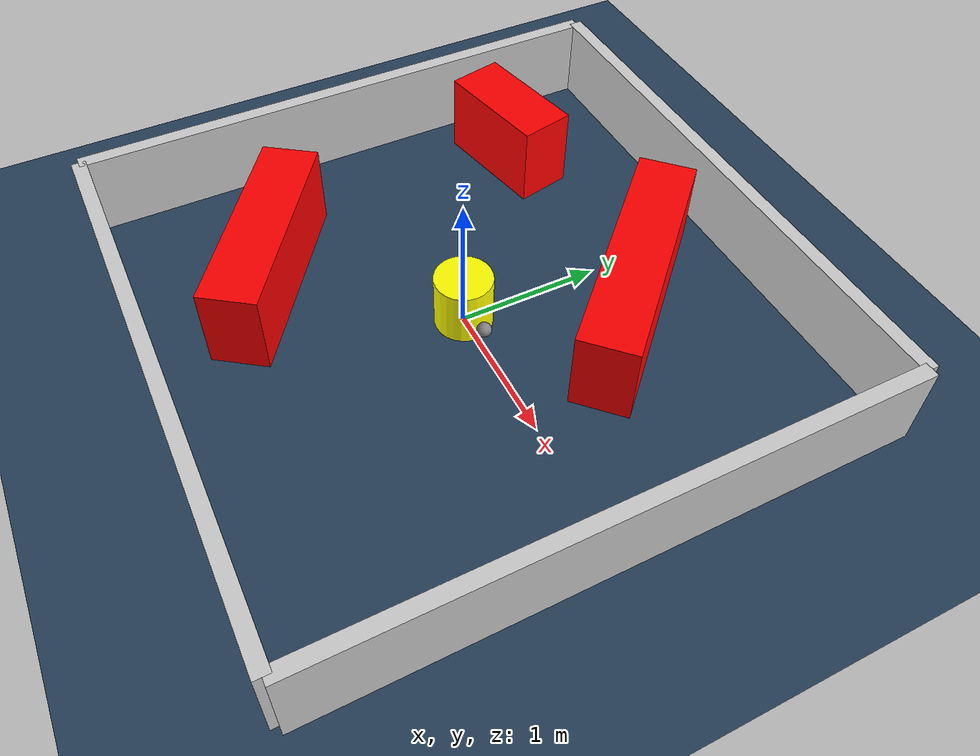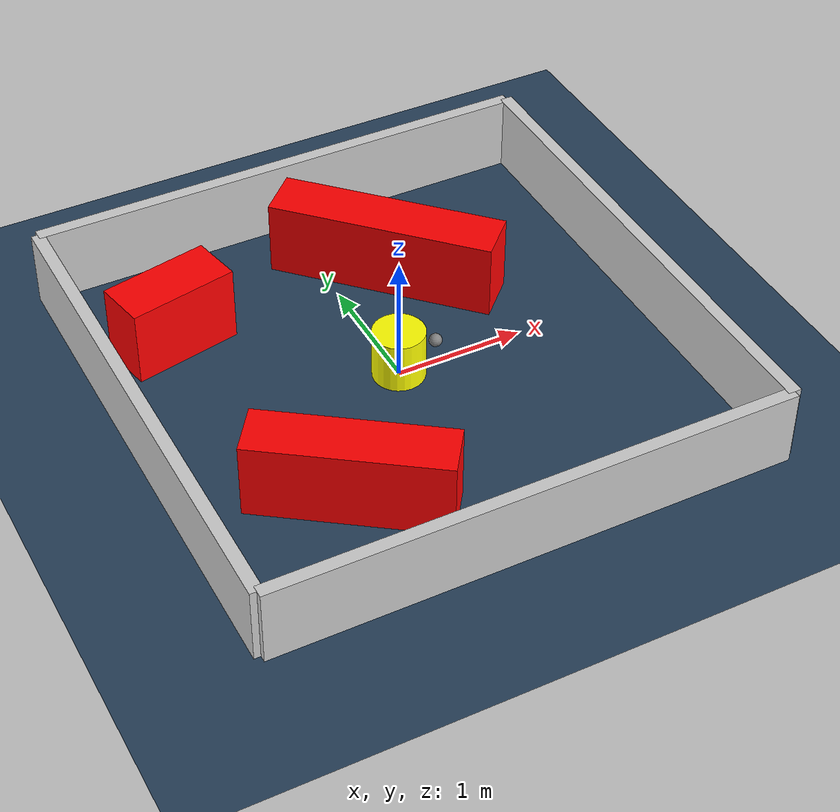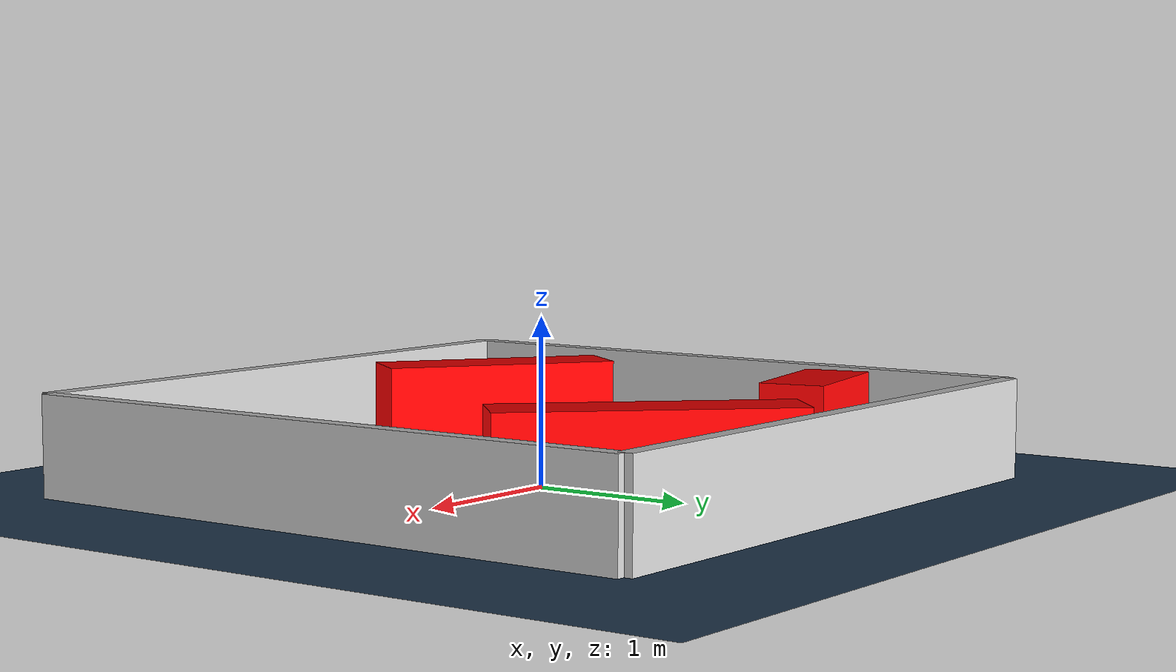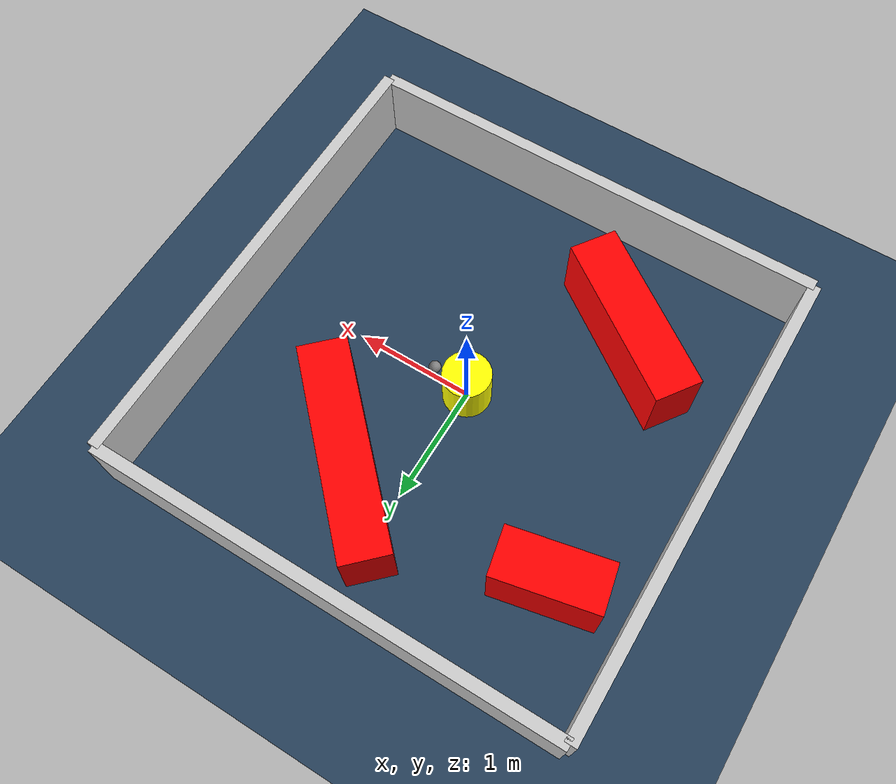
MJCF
<?xml version="1.0" ?>
<mujoco model="generated_environment">
  <option timestep="0.01" integrator="RK4" cone="elliptic"/>
  <default>
    <geom density="1"/>
  </default>
  <asset>
    <texture builtin="gradient" height="3072" rgb1="0.3 0.5 0.7" rgb2="0 0 0" type="skybox" width="512"/>
    <texture builtin="checker" height="300" mark="edge" markrgb="0.8 0.8 0.8" name="groundplane" rgb1="0.2 0.3 0.4" rgb2="0.1 0.2 0.3" type="2d" width="300"/>
    <material name="groundplane" reflectance="0.2" texrepeat="5 5" texture="groundplane" texuniform="true"/>
    <material name="robot" rgba="0.0 1.0 0.0 1"/>
  </asset>
  <worldbody>
    <light dir="0 0 -1" directional="true" pos="0 0 1.5"/>
    <geom condim="4" friction="1.0 0.005 0.001" material="groundplane" name="floor" size="0 0 0.05" type="plane"/>
    <body name="walls">
      <geom name="wall_1" condim="4" pos="-2.0 0.0 0.3" rgba="0.800000011920929 0.800000011920929 0.800000011920929 1.0" size="0.05 2.0 0.3" type="box"/>
      <geom name="wall_2" condim="4" pos="2.0 0.0 0.3" rgba="0.800000011920929 0.800000011920929 0.800000011920929 1.0" size="0.05 2.0 0.3" type="box"/>
      <geom name="wall_3" condim="4" pos="0.0 -2.0 0.3" rgba="0.800000011920929 0.800000011920929 0.800000011920929 1.0" size="2.0 0.05 0.3" type="box"/>
      <geom name="wall_4" condim="4" pos="0.0 2.0 0.3" rgba="0.800000011920929 0.800000011920929 0.800000011920929 1.0" size="2.0 0.05 0.3" type="box"/>
    </body>
    <body name="robot">
      <joint name="joint_x" type="slide" pos="0 0 0" axis="1 0 0"/>
      <joint name="joint_y" type="slide" pos="0 0 0" axis="0 1 0"/>
      <geom name="robot" type="sphere" pos="0.3 0.0 0.2" size="0.05" mass="5." friction="1.0 0.005 0.0001" condim="4" rgba="0.5 0.5 0.5 1.0"/>
      <site name="sensor_ball"/>
    </body>
    <body name="obstacle_movable_1">
      <geom name="obstacle_movable_1" condim="4" pos="0.0 0.0 0.2" euler="0 0 0.0" friction="1.0 0.005 0.001" rgba="1.0 1.0 0.0 1.0" size="0.2 0.2 0.0" type="cylinder" mass="0.1"/>
      <joint type="free"/>
    </body>
    <body name="obstacle_2_static">
      <geom name="obstacle_2_static" condim="4" pos="-1.3377218708424898 1.0475669094799651 0.3" euler="0 0 11.844166381471815" friction="1.0 0.005 0.001" rgba="1 0 0 1" size="0.4259144855115303 0.2 0.3" type="box"/>
    </body>
    <body name="obstacle_3_static">
      <geom name="obstacle_3_static" condim="4" pos="0.43303981818832815 1.0476588276966698 0.3" euler="0 0 314.53659177782106" friction="1.0 0.005 0.001" rgba="1 0 0 1" size="0.8802837172056714 0.2 0.3" type="box"/>
    </body>
    <body name="obstacle_4_static">
      <geom name="obstacle_4_static" condim="4" pos="-0.8920258945071213 -1.0484744754379454 0.3" euler="0 0 324.8081212010376" friction="1.0 0.005 0.001" rgba="1 0 0 1" size="0.7305003154916779 0.2 0.3" type="box"/>
    </body>
  </worldbody>
  <actuator>
    <motor name="actuator_x" joint="joint_x" gear="1" ctrlrange="-1 1"/>
    <motor name="actuator_y" joint="joint_y" gear="1" ctrlrange="-1 1"/>
  </actuator>
</mujoco>
